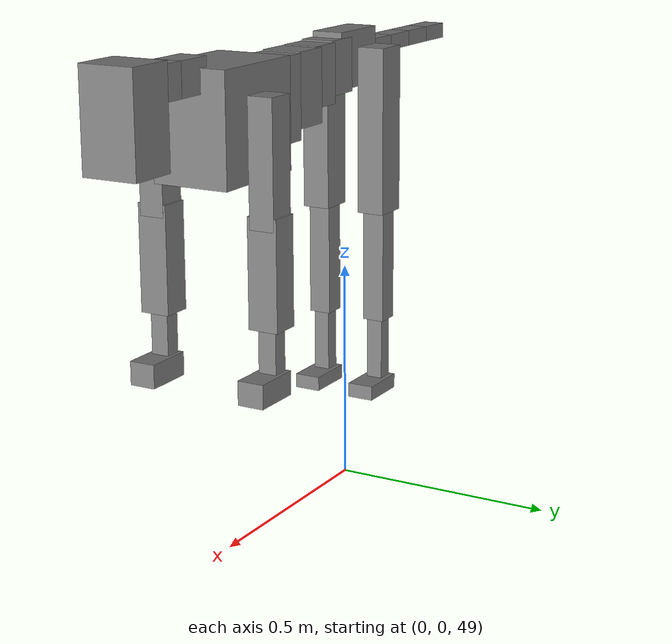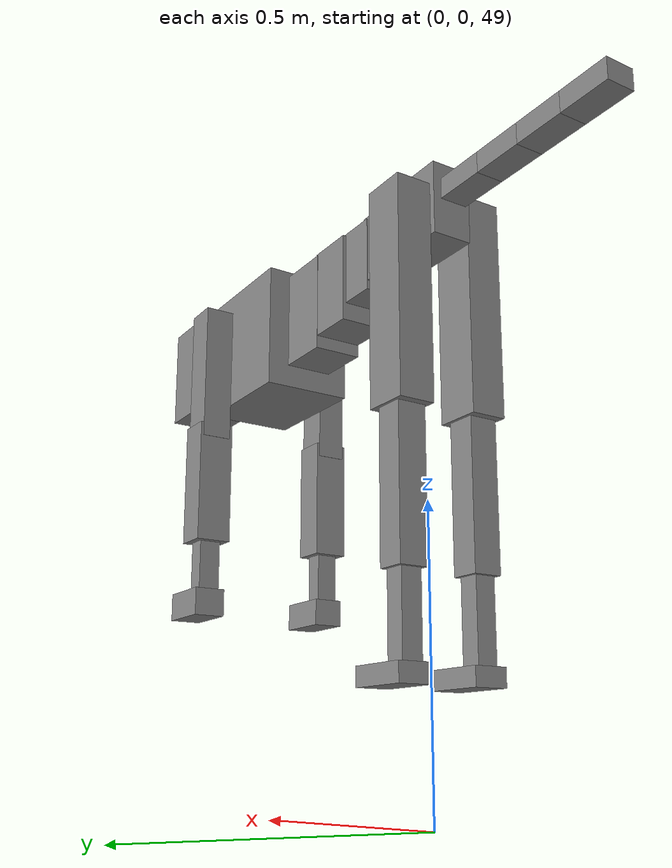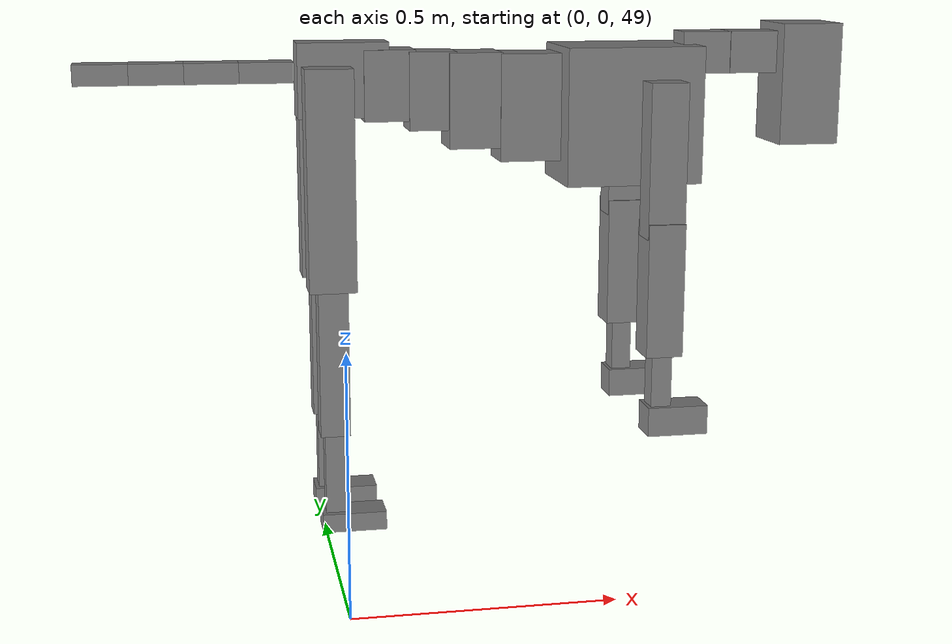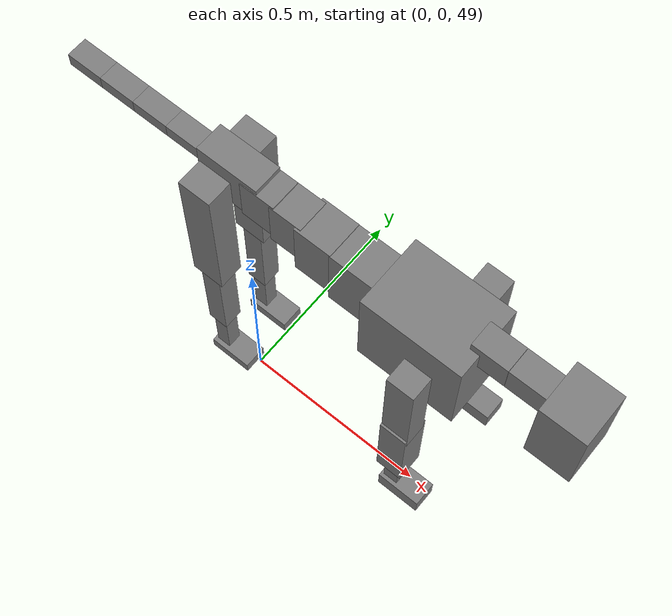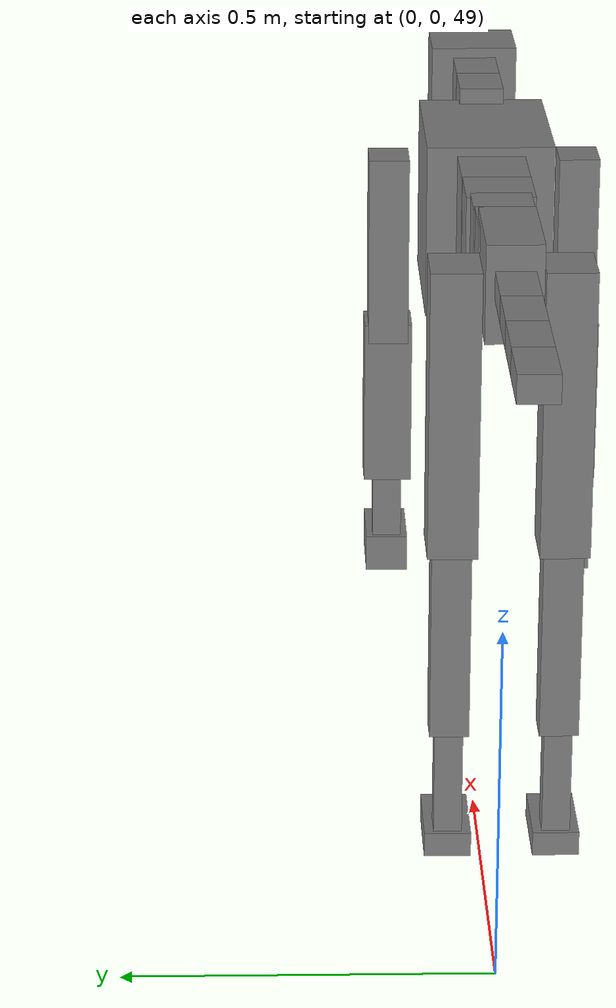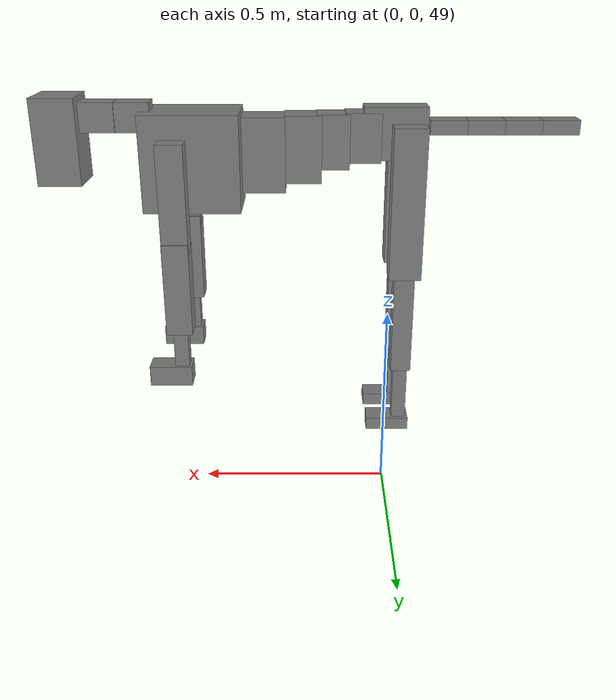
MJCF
<mujoco model="dog">

    <default>
        <joint armature="0.02" stiffness="1" damping="0.2" limited="true"/>
        <geom condim="3" friction="1 0.05 0.05" margin="0.01"/>
        <motor ctrllimited="true" ctrlrange="-1.0 1.0" forcelimited="true" gear="50"/>
    </default>

    <compiler inertiafromgeom="true" angle="radian"/>

    <option timestep="0.016" iterations="50" tolerance="1e-10" solver="Newton" jacobian="dense" cone="pyramidal"/>

    <size nconmax="20000" njmax="60000" nstack="5000000"/>
    <visual>
        <map force="0.1" zfar="30"/>
        <rgba haze="0.15 0.25 0.35 1"/>
        <quality shadowsize="2048"/>
        <global offwidth="800" offheight="800"/>
    </visual>

    <asset>
        <texture type="skybox" builtin="gradient" rgb1="0.3 0.5 0.7" rgb2="0 0 0" width="512" height="512"/>
        <texture name="texplane" type="2d" builtin="checker" rgb1=".2 .3 .4" rgb2=".1 0.15 0.2" width="512" height="512"
                 mark="cross" markrgb=".8 .8 .8"/>
        <texture name="texgeom" type="cube" builtin="flat" mark="cross" width="127" height="1278" rgb1="0.8 0.6 0.4"
                 rgb2="0.8 0.6 0.4" markrgb="1 1 1" random="0.01"/>

        <material name="matplane" reflectance="0.3" texture="texplane" texrepeat="1 1" texuniform="true"/>
        <material name="matgeom" texture="texgeom" texuniform="true" rgba="0.8 0.6 .4 1"/>
    </asset>

    <worldbody>
        <geom name="floor" pos="0 0 0" size="0 0 .25" type="plane" material="matplane" condim="3"/>

        <light directional="false" diffuse=".2 .2 .2" specular="0 0 0" pos="0 0 5" dir="0 0 -1" castshadow="false"/>
        <light mode="targetbodycom" target="torso" directional="false" diffuse=".8 .8 .8" specular="0.3 0.3 0.3"
               pos="0 0 4.0" dir="0 0 -1"/>

        <body name="root" pos="0 0 50">
            <freejoint name="root_1"/>
            <geom type="box" pos="0 0 -0.02" size="0.0774  0.0358  0.063" density="2030"/>

            <body name="spine1" pos="0.054 0 0">
                <joint name="spine1_y" axis="0 1 0" range="0 0.7" limited="true"/>
                <geom type="box" pos="0.02375 0 -0.03" size="0.04375  0.0375  0.05985" density="2030"/>

                <body name="spine2" pos="0.0612 0 0">
                    <joint name="spine2_y" axis="0 1 0" range="-0.15 0.15" limited="true"/>
                    <geom type="box" pos="0.03555  0  -0.04" size="0.04055  0.039  0.06615" density="2030"/>

                    <body name="spine3" pos="0.0730 0 0">
                        <joint name="spine3_y" axis="0 1 0" range="-0.15 0.15" limited="true"/>
                        <geom type="box" pos="0.03555  0  -0.057" size="0.04555  0.0445  0.081" density="2030"/>

                        <body name="spine4" pos="0.0780 0 0">
                            <joint name="spine4_y" axis="0 1 0" range="-0.15 0.15" limited="true"/>
                            <geom type="box" pos="0.05265  0  -0.07" size="0.05265  0.045  0.09135" density="2030"/>

                            <body name="torso" pos="0.1082 0 0">
                                <joint name="torso_y" axis="0 1 0" range="-0.15 0.15" limited="true"/>
                                <geom type="box" pos="0.11925  0  -0.085" size="0.11925  0.085  0.11745"
                                      density="2030"/>

                                <body name="neck1" pos="0.2160  0   0.0180">
                                    <joint name="neck1_y" axis="0 1 0" range="-1.2  -1" limited="true"/>
                                    <geom type="box" pos="0.0423  0  0" size="0.0423  0.03  0.036" density="2325"/>

                                    <body name="neck2" pos="0.0853  0  0">
                                        <joint name="neck2_y" axis="0 1 0" range="0.1  0" limited="true"/>
                                        <geom type="box" pos="0.0423  0  0" size="0.0423  0.03  0.036" density="2325"/>

                                        <body name="head" pos="0.0853  0  0">
                                            <joint name="head_y" axis="0 1 0" range="-0.3  -0.2" limited="true"/>
                                            <geom type="box" pos="0.0531  0  -0.055" size="0.0531  0.06  0.1044"
                                                  density="4030"/>

                                        </body>
                                    </body>
                                </body>

                                <body name="front_shoulder" pos="0.156  0   -0.0480">
                                    <joint name="front_shoulder_y" axis="0 1 0" range="-1 1.5" limited="true"/>
                                    <geom type="box" pos="0 0.13 -0.1052" size="0.0323  0.0276  0.1318" density="1158"/>
                                    <geom type="box" pos="0 -0.13 -0.1052" size="0.0323  0.0276  0.1318"
                                          density="1158"/>

                                    <body name="front_elbow" pos="0  0  -0.2104">
                                        <joint name="front_elbow_y" axis="0 1 0" range="-2 0" limited="true"/>
                                        <geom type="box" pos="0 0.13 -0.1152" size="0.0321  0.0329  0.1152"
                                              density="1081"/>
                                        <geom type="box" pos="0 -0.13 -0.1152" size="0.0321  0.0329  0.1152"
                                              density="1081"/>

                                        <body name="front_wrist" pos="0  0  -0.2304">
                                            <joint name="front_wrist_y" axis="0 1 0" range="-0.2 0" limited="true"/>
                                            <geom type="box" pos="0 0.13 -0.0530" size="0.0179  0.0199  0.0662"
                                                  density="1664"/>
                                            <geom type="box" pos="0 -0.13 -0.0530" size="0.0179  0.0199  0.0662"
                                                  density="1664"/>

                                            <body name="front_finger_end" pos="0  0  -0.1061">
                                                <joint name="front_finger_y" axis="0 1 0" range="-0.4 1"
                                                       limited="true"/>
                                                <geom type="box" pos="0.0290  0.13  -0.0105"
                                                      size="0.0532  0.0290  0.0255" density="1515"/>
                                                <geom type="box" pos="0.0290  -0.13  -0.0105"
                                                      size="0.0532  0.0290  0.0255" density="1515"/>

                                            </body>

                                        </body>
                                    </body>
                                </body>

                            </body>
                        </body>
                    </body>
                </body>
            </body>

            <body name="back_hip" pos="-0.03 0 -0.018">
                <joint name="back_hip_y" axis="0 1 0" range="-1.5 0.3" limited="true"/>
                <geom type="box" pos="0 0.07 -0.1637" size="0.0404  0.0317  0.1865" density="1154"/>
                <geom type="box" pos="0 -0.07 -0.1637" size="0.0404  0.0317  0.1865" density="1154"/>

                <body name="back_knee" pos="0  0  -0.3274">
                    <joint name="back_knee_y" axis="0 1 0" range="0 2.8" limited="true"/>
                    <geom type="box" pos="0 0.07 -0.1298" size="0.0256  0.0253  0.1454" density="1227"/>
                    <geom type="box" pos="0 -0.07 -0.1298" size="0.0256  0.0253  0.1454" density="1227"/>

                    <body name="back_ankle" pos="0  0  -0.2596">
                        <joint name="back_ankle_y" axis="0 1 0" range="-2.2 0" limited="true"/>
                        <geom type="box" pos="0 0.07 -0.0848" size="0.0182  0.0182  0.0961" density="1284"/>
                        <geom type="box" pos="0 -0.07 -0.0848" size="0.0182  0.0182  0.0961" density="1284"/>

                        <body name="back_toe_end" pos="0  0  -0.1696">
                            <joint name="back_toe_y" axis="0 1 0" range="-0.4 1" limited="true"/>
                            <geom type="box" pos="0.0301  0.07  -0.0012" size="0.0552  0.0301  0.0162" density="1515"/>
                            <geom type="box" pos="0.0301  -0.07  -0.0012" size="0.0552  0.0301  0.0162" density="1515"/>

                        </body>
                    </body>
                </body>
            </body>

            <body name="tail1" pos="-0.074 0 -0.006">
                <joint name="tail1_y" axis="0 1 0" range="-0.2 0.2" limited="true"/>
                <geom type="box" pos="-0.0536  0  0" size="0.045  0.025  0.0175" density="1587"/>

                <body name="tail2" pos="-0.09 0 0">
                    <joint name="tail2_y" axis="0 1 0" range="-0.2 0.2" limited="true"/>
                    <geom type="box" pos="-0.0536  0  0" size="0.045  0.025  0.0175" density="1587"/>

                    <body name="tail3" pos="-0.09 0 0">
                        <joint name="tail3_y" axis="0 1 0" range="-0.2 0.2" limited="true"/>
                        <geom type="box" pos="-0.0536  0  0" size="0.045  0.025  0.0175" density="1587"/>

                        <body name="tail4" pos="-0.09 0 0">
                            <joint name="tail4_y" axis="0 1 0" range="-0.2 0.2" limited="true"/>
                            <geom type="box" pos="-0.0536  0  0" size="0.045  0.025  0.0175" density="1587"/>

                        </body>
                    </body>
                </body>
            </body>
        </body>
    </worldbody>

    <actuator>
        <motor joint="spine1_y" forcerange="-150 150     "/>
        <motor joint="spine2_y" forcerange="-150 150     "/>
        <motor joint="spine3_y" forcerange="-150 150     "/>
        <motor joint="spine4_y" forcerange="-150 150     "/>
        <motor joint="torso_y" forcerange="-150 150     "/>
        <motor joint="neck1_y" forcerange="-100 100       "/>
        <motor joint="neck2_y" forcerange="-100 100       "/>
        <motor joint="head_y" forcerange="-150 150       "/>
        <motor joint="front_shoulder_y" forcerange="-143.57 140.46"/>
        <motor joint="front_elbow_y" forcerange="-157.62 181.36"/>
        <motor joint="front_wrist_y" forcerange="-108.17 50.82"/>
        <motor joint="front_finger_y" forcerange="-82.20 32.67"/>
        <motor joint="back_hip_y" forcerange="-388.10 234.78"/>
        <motor joint="back_knee_y" forcerange="-224.61 342.70"/>
        <motor joint="back_angle_y" forcerange="-115.66 74.76"/>
        <motor joint="back_toe_y" forcerange="-73.84 86.94"/>
        <motor joint="tail1_y" forcerange="-50 50     "/>
        <motor joint="tail2_y" forcerange="-50 50     "/>
        <motor joint="tail3_y" forcerange="-50 50     "/>
        <motor joint="tail4_y" forcerange="-50 50     "/>
    </actuator>
</mujoco>
